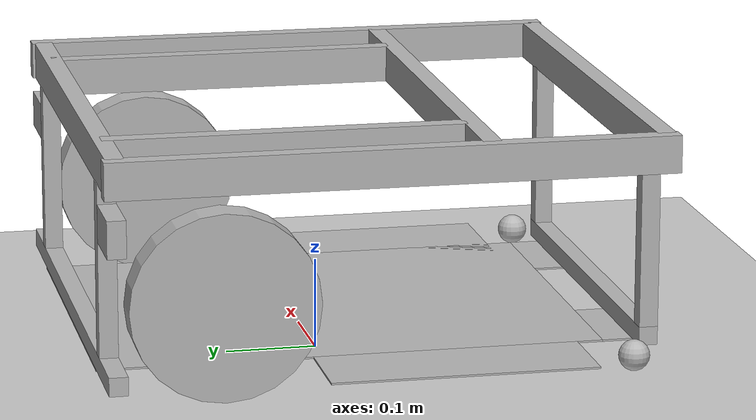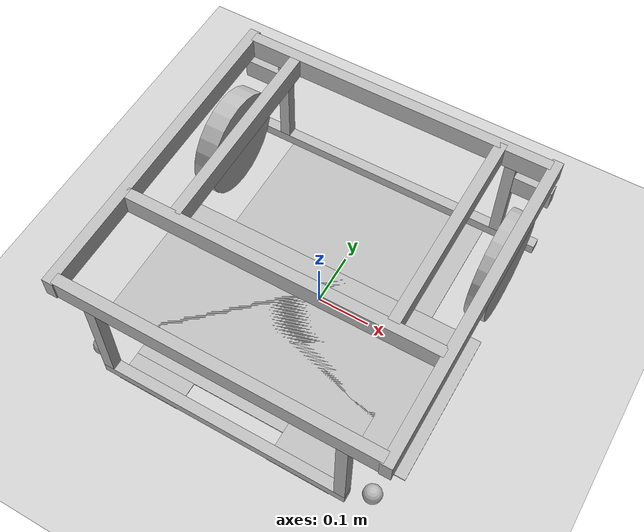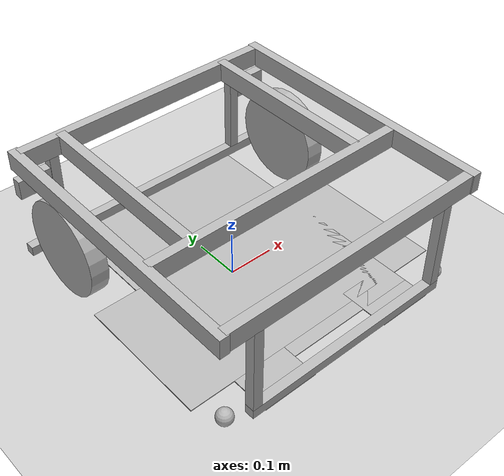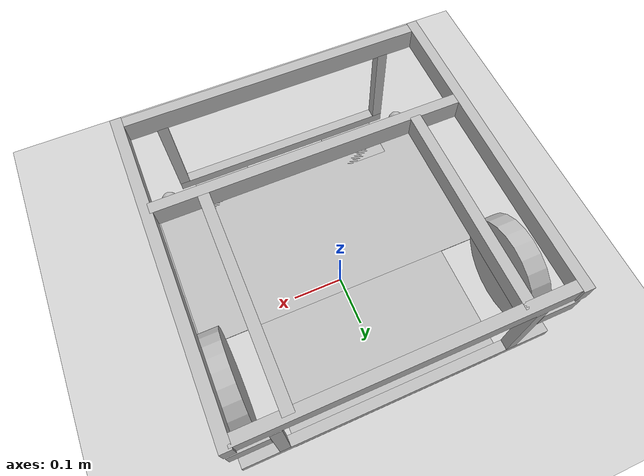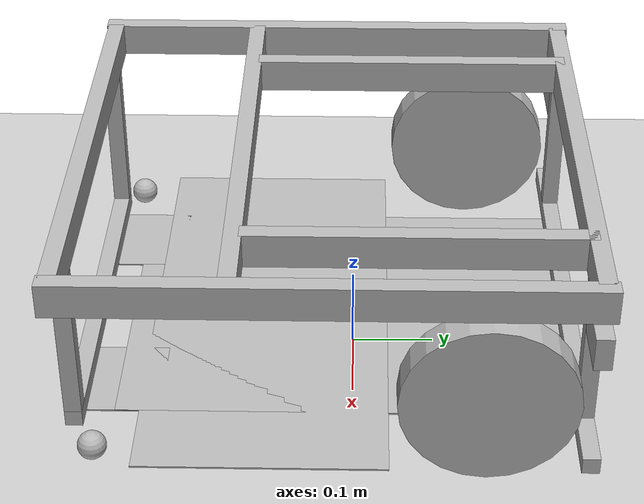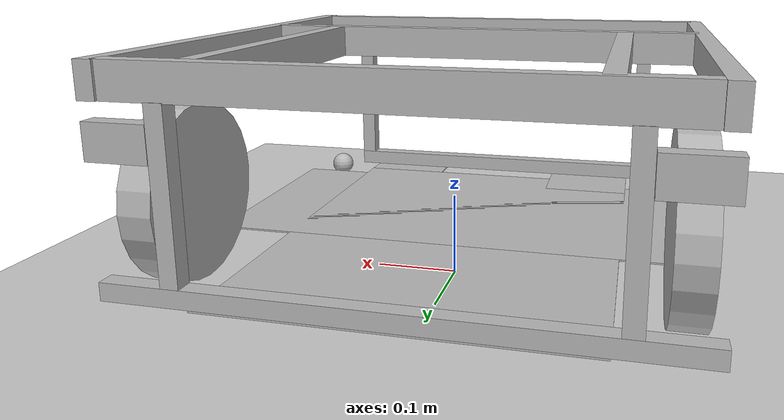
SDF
<?xml version="1.0"?>
<sdf version="1.4">
  <world name="default">

    <!-- Ground Plane -->
    <include>
      <uri>model://ground_plane</uri>
    </include>

    <include>
      <uri>model://sun</uri>
    </include>

<!-- Differential drive model -->

<model name="project">
  <pose>0 0 0.05 0 0 0</pose>
    <link name="robot_chassis">
      <inertial>
        <pose>0.007 0.003 0.112 0 0 0</pose>
        <mass>13.741</mass>
      </inertial>

    <!-- COLLISIONS -->
      <!--Base plate collisions-->
      <collision name="base_plate0">
        <pose>0 0 0 0 0 0</pose>
        <geometry>
          <box>
            <size>0.406 0.544 0.002</size>
          </box>
        </geometry>
      </collision>
      <collision name="base_plate1">
        <pose>-0 -0.101 0 0 0 0</pose>
        <geometry>
          <box>
            <size>0.596 0.286 0.002</size>
          </box>
        </geometry>
      </collision>
      <collision name="base_plate2">
        <pose>-0.145 -0.272 0 0 0 0</pose>
        <geometry>
          <box>
            <size>0.116 0.104 0.002</size>
          </box>
        </geometry>
      </collision>
      <collision name="base_plate3">
        <pose>0.145 -0.272 0 0 0 0</pose>
        <geometry>
          <box>
            <size>0.116 0.104 0.002</size>
          </box>
        </geometry>
      </collision>
      <!--Chassis collisions -->
        <!--Upper part -->
      <collision name="chassis0_up">
        <pose>0 -0.314 0.225 0 0 0</pose>
        <geometry>
          <box>
            <size>0.570 0.020 0.040</size>
          </box>
        </geometry>
      </collision>
      <collision name="chassis1_up">
        <pose>0 -0.129 0.225 0 0 0</pose>
        <geometry>
          <box>
            <size>0.570 0.020 0.040</size>
          </box>
        </geometry>
      </collision>
      <collision name="chassis2_up">
        <pose>0 0.261  0.225 0 0 0</pose>
        <geometry>
          <box>
            <size>0.570 0.020 0.040</size>
          </box>
        </geometry>
      </collision>
      <collision name="chassis3_up">
        <pose>0.290 -0.026 0.225 0 0 0</pose>
        <geometry>
          <box>
            <size>0.020 0.600 0.040</size>
          </box>
        </geometry>
      </collision>
      <collision name="chassis4_up">
        <pose>-0.290 -0.026 0.225 0 0 0</pose>
        <geometry>
          <box>
            <size>0.020 0.600 0.040</size>
          </box>
        </geometry>
      </collision>
      <collision name="chassis5_up">
        <pose>-0.195 0.070 0.225 0 0 0</pose>
        <geometry>
          <box>
            <size>0.020 0.385 0.040</size>
          </box>
        </geometry>
      </collision>
      <collision name="chassis6_up">
        <pose>0.195 0.070 0.225 0 0 0</pose>
        <geometry>
          <box>
            <size>0.020 0.385 0.040</size>
          </box>
        </geometry>
      </collision>
      <!--Chassis collisions -->
        <!--Lower part -->
      <collision name="chassis0_down">
        <pose>0 0.262 0.011 0 0 0</pose>
        <geometry>
          <box>
            <size>0.600 0.020 0.020</size>
          </box>
        </geometry>
      </collision>
      <collision name="chassis1_down">
        <pose>0.221 0.262 0.1135 0 0 0</pose>
        <geometry>
          <box>
            <size>0.020 0.020 0.185</size>
          </box>
        </geometry>
      </collision>
      <collision name="chassis2_down">
        <pose>-0.221 0.262 0.1135 0 0 0</pose>
        <geometry>
          <box>
            <size>0.020 0.020 0.185</size>
          </box>
        </geometry>
      </collision>
      <collision name="chassis3_down">
        <pose>-0.266 0.262 0.165 0 0 0</pose>
        <geometry>
          <box>
            <size>0.069 0.020 0.040</size>
          </box>
        </geometry>
      </collision>
      <collision name="chassis4_down">
        <pose>0.266 0.262 0.165 0 0 0</pose>
        <geometry>
          <box>
            <size>0.069 0.020 0.040</size>
          </box>
        </geometry>
      </collision>
      <collision name="chassis5_down">
        <pose>0 -0.314 0.011 0 0 0</pose>
        <geometry>
          <box>
            <size>0.462 0.020 0.020</size>
          </box>
        </geometry>
      </collision>
      <collision name="chassis6_down">
        <pose>0.221 -0.314 0.1135 0 0 0</pose>
        <geometry>
          <box>
            <size>0.020 0.020 0.185</size>
          </box>
        </geometry>
      </collision>
      <collision name="chassis7_down">
        <pose>-0.221 -0.314 0.1135 0 0 0</pose>
        <geometry>
          <box>
            <size>0.020 0.020 0.185</size>
          </box>
        </geometry>
      </collision>

    <!-- VISUALS -->

      <!--Base plate visuals -->
      <visual name="base_plate_visual0">
        <pose>0 0 0 0 0 0</pose>
        <geometry>
          <box>
            <size>0.406 0.544 0.002</size>
          </box>
        </geometry>
      </visual>
      <visual name="base_plate_visual1">
        <pose>0 -0.101 0 0 0 0</pose>
        <geometry>
          <box>
            <size>0.596 0.286 0.002</size>
          </box>
        </geometry>
      </visual>
      <visual name="base_plate_visual2">
        <pose>-0.145 -0.272 0 0 0 0</pose>
        <geometry>
          <box>
            <size>0.116 0.104 0.002</size>
          </box>
        </geometry>
      </visual>
      <visual name="base_plate_visual3">
        <pose>0.145 -0.272 0 0 0 0</pose>
        <geometry>
          <box>
            <size>0.116 0.104 0.002</size>
          </box>
        </geometry>
      </visual>
      <!--Chassis visuals -->
        <!-- Upper part -->
      <visual name="chassis0_up">
        <pose>0 -0.314 0.225 0 0 0</pose>
        <geometry>
          <box>
            <size>0.570 0.020 0.040</size>
          </box>
        </geometry>
      </visual>
      <visual name="chassis1_up">
        <pose>0 -0.129 0.225 0 0 0</pose>
        <geometry>
          <box>
            <size>0.570 0.020 0.040</size>
          </box>
        </geometry>
      </visual>
      <visual name="chassis2_up">
        <pose>0 0.261  0.225 0 0 0</pose>
        <geometry>
          <box>
            <size>0.570 0.020 0.040</size>
          </box>
        </geometry>
      </visual>
      <visual name="chassis3_up">
        <pose>0.290 -0.026 0.225 0 0 0</pose>
        <geometry>
          <box>
            <size>0.020 0.600 0.040</size>
          </box>
        </geometry>
      </visual>
      <visual name="chassis4_up">
        <pose>-0.290 -0.026 0.225 0 0 0</pose>
        <geometry>
          <box>
            <size>0.020 0.600 0.040</size>
          </box>
        </geometry>
      </visual>
      <visual name="chassis5_up">
        <pose>-0.195 0.070 0.225 0 0 0</pose>
        <geometry>
          <box>
            <size>0.020 0.385 0.040</size>
          </box>
        </geometry>
      </visual>
      <visual name="chassis6_up">
        <pose>0.195 0.070 0.225 0 0 0</pose>
        <geometry>
          <box>
            <size>0.020 0.385 0.040</size>
          </box>
        </geometry>
      </visual>
        <!--Lower part -->
      <visual name="chassis0_down">
        <pose>0 0.262 0.011 0 0 0</pose>
        <geometry>
          <box>
            <size>0.600 0.020 0.020</size>
          </box>
        </geometry>
      </visual>
      <visual name="chassis1_down">
        <pose>0.221 0.262 0.1135 0 0 0</pose>
        <geometry>
          <box>
            <size>0.020 0.020 0.185</size>
          </box>
        </geometry>
      </visual>
      <visual name="chassis2_down">
        <pose>-0.221 0.262 0.1135 0 0 0</pose>
        <geometry>
          <box>
            <size>0.020 0.020 0.185</size>
          </box>
        </geometry>
      </visual>
      <visual name="chassis3_down">
        <pose>-0.266 0.262 0.165 0 0 0</pose>
        <geometry>
          <box>
            <size>0.069 0.020 0.040</size>
          </box>
        </geometry>
      </visual>
      <visual name="chassis4_down">
        <pose>0.266 0.262 0.165 0 0 0</pose>
        <geometry>
          <box>
            <size>0.069 0.020 0.040</size>
          </box>
        </geometry>
      </visual>
      <visual name="chassis5_down">
        <pose>0 -0.314 0.011 0 0 0</pose>
        <geometry>
          <box>
            <size>0.462 0.020 0.020</size>
          </box>
        </geometry>
      </visual>
      <visual name="chassis6_down">
        <pose>0.221 -0.314 0.1135 0 0 0</pose>
        <geometry>
          <box>
            <size>0.020 0.020 0.185</size>
          </box>
        </geometry>
      </visual>
      <visual name="chassis7_down">
        <pose>-0.221 -0.314 0.1135 0 0 0</pose>
        <geometry>
          <box>
            <size>0.020 0.020 0.185</size>
          </box>
        </geometry>
      </visual>

    <!-- WHEELS-->
      <!-- Rear bickle wheels as casters -->
      <!-- Both colllisions and visual -->
      <collision name = "left_bickle_wheel_caster">
        <pose>-0.2635 -0.2895 0.001 0 0 0</pose>
        <geometry>
          <sphere>
            <radius>0.016618</radius>
          </sphere>
        </geometry>
        <surface>
          <friction>
            <ode>
              <mu>0</mu>
              <mu2>0</mu2>
              <slip1>1.0</slip1>
              <slip2>1.0</slip2>
            </ode>
          </friction>
        </surface>
      </collision>

      <visual name = "left_bickle_wheel_caster_visual">
        <pose>-0.2635 -0.2895 0.001 0 0 0</pose>
        <geometry>
          <sphere>
            <radius>0.016618</radius>
          </sphere>
        </geometry>
      </visual>

      <collision name = "right_bickle_wheel_caster">
        <pose>0.2635 -0.2895 0.001 0 0 0</pose>
        <geometry>
          <sphere>
            <radius>0.016618</radius>
          </sphere>
        </geometry>
        <surface>
          <friction>
            <ode>
              <mu>0</mu>
              <mu2>0</mu2>
              <slip1>1.0</slip1>
              <slip2>1.0</slip2>
            </ode>
          </friction>
        </surface>
      </collision>

      <visual name = "right_bickle_wheel_caster_visual">
        <pose>0.2635 -0.2895 0.001 0 0 0</pose>
        <geometry>
          <sphere>
            <radius>0.016618</radius>
          </sphere>
        </geometry>
      </visual>
    </link>

    <link name="left_motor_wheel">
      <inertial>
        <pose>0 0 0.0042 0 0 0</pose>
        <mass>1.790</mass>
      </inertial>
      <pose>-0.270 0.149 0.0835 0 1.57079632679 0</pose>
      <collision name="collision">
        <geometry>
          <cylinder>
            <radius>0.100</radius>
            <length>0.038 </length>
          </cylinder>
        </geometry>
      </collision>
      <visual name="visual">
        <geometry>
          <cylinder>
            <radius>0.100</radius>
            <length>0.038 </length>
          </cylinder>
        </geometry>
      </visual>
    </link>

    <link name="right_motor_wheel">
      <inertial>
        <pose>0 0 0.0042 0 0 0</pose>
        <mass>1.790</mass>
      </inertial>
      <pose>0.270 0.149 0.0835 0 -1.57079632679 0</pose>
      <collision name="collision">
        <geometry>
          <cylinder>
            <radius>0.100</radius>
            <length>0.038 </length>
          </cylinder>
        </geometry>
      </collision>
      <visual name="visual">
        <geometry>
          <cylinder>
            <radius>0.100</radius>
            <length>0.038 </length>
          </cylinder>
        </geometry>
      </visual>
    </link>

  <!-- JOINTS -->
    <joint type="revolute" name="left_motor_wheel_hinge">
      <parent>robot_chassis</parent>
      <child>left_motor_wheel</child>
      <axis>
        <xyz>-1 0 0</xyz>
      </axis>
    </joint>

    <joint type="revolute" name="right_motor_wheel_hinge">
      <parent>robot_chassis</parent>
      <child>right_motor_wheel</child>
      <axis>
        <xyz>-1 0 0</xyz>
      </axis>
    </joint>

    <joint type="revolute2" name="left_bickle_wheel_hinge">
      <parent>robot_chassis</parent>
      <child>left_bickle_wheel</child>
      <axis>
        <xyz>0 0 1</xyz>
      </axis>
      <axis2>
        <xyz>1 0 0</xyz>
      </axis2>
    </joint>

    <joint type="revolute2" name="right_bickle_wheel_hinge">
      <parent>robot_chassis</parent>
      <child>right_bickle_wheel</child>
      <axis>
        <xyz>0 0 1</xyz>
      </axis>
      <axis2>
        <xyz>1 0 0</xyz>
      </axis2>
    </joint>

<!-- Differential drive plugin -->

  <plugin name="differential_drive_controller" filename="libgazebo_ros_diff_drive.so">
    <alwaysOn>true</alwaysOn>
    <updateRate>10</updateRate>
    <leftJoint>right_motor_wheel_hinge</leftJoint>
    <rightJoint>left_motor_wheel_hinge</rightJoint>
    <wheelSeparation>0.53</wheelSeparation>
    <wheelDiameter>0.2</wheelDiameter>
    <torque>5</torque>
    <commandTopic>cmd_vel</commandTopic>
    <odometryTopic>odom</odometryTopic>
    <odometryFrame>odom</odometryFrame>
    <robotBaseFrame>base_footprint</robotBaseFrame>
    <robotNamespace>/</robotNamespace>
  </plugin>

<!-- Encoder plugin -->

  <plugin name="model_encoder" filename="libmodel_encoder.so"/>

  </model>

  </world>
</sdf>
